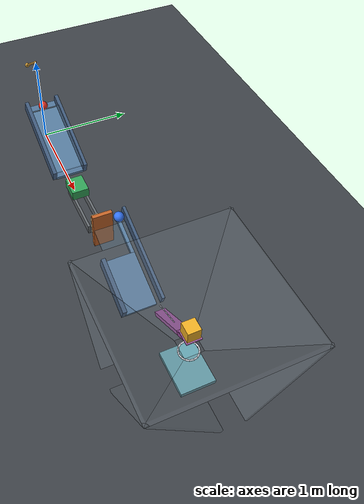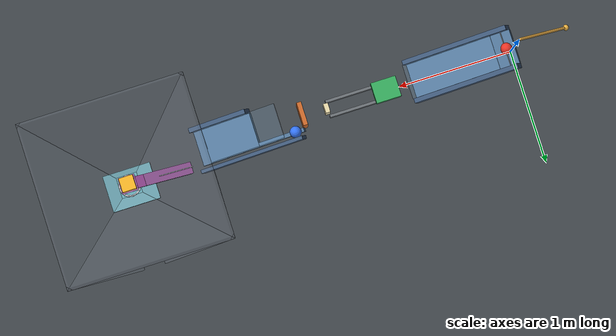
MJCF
<mujoco model="passive_chain_launcher_revision">
  <compiler angle="degree" autolimits="true"/>
  <option timestep="0.002" gravity="0 0 -9.81" integrator="implicitfast" solver="Newton" iterations="100" tolerance="1e-10"/>
  <size njmax="3000" nconmax="800"/>
  <visual>
    <global azimuth="135" elevation="-20"/>
    <headlight ambient="0.35 0.35 0.35" diffuse="0.65 0.65 0.65" specular="0.15 0.15 0.15"/>
  </visual>

  <!-- Contact damping approximates restitution 0.05. -->
  <!-- Tangential friction is 0.68 throughout. -->
  <!-- All bodies start from rest; there are no actuators or timed controls. -->
  <!-- The launcher uses a passive preloaded over-centre spring. -->

  <worldbody>
    <light name="main_light" pos="1.5 -3 5" dir="0 0 -1"/>
    <camera name="overview" pos="2 -5 2.8" xyaxes="1 0 0 0 0.4 0.916515"/>
    <geom name="floor" type="plane" pos="0 0 0" size="6 3 0.1" condim="6" friction="0.68 0.005 0.001" solref="0.006 0.6901" solimp="0.95 0.99 0.001" rgba="0.24 0.26 0.28 1"/>

    <!-- Body orientation supplies the 55-degree release angle. -->
    <!-- Pivot-to-lowest-point length is 0.55 m; total mass is 0.40 kg. -->
    <body name="pendulum1" pos="-0.001991 0 1.012032" quat="0.887010833 0 0.461748613 0">
      <joint name="pendulum1_hinge" type="hinge" axis="0 1 0" range="-110 0" damping="0.04" solreflimit="0.004 1" solimplimit="0.99 0.999 0.0001"/>
      <geom name="pendulum1_rod" type="capsule" fromto="0 0 -0.012 0 0 -0.510" size="0.012" mass="0.10" friction="0.68 0.005 0.001" solref="0.006 0.6901" solimp="0.95 0.99 0.001" rgba="0.75 0.55 0.20 1"/>
      <geom name="pendulum1_tip" type="sphere" pos="0 0 -0.525" size="0.025" mass="0.30" friction="0.68 0.005 0.001" solref="0.006 0.6901" solimp="0.95 0.99 0.001" rgba="0.90 0.68 0.25 1"/>
    </body>

    <body name="ball1" pos="0.073009 0 0.487032">
      <freejoint name="ball1_free"/>
      <geom name="ball1_geom" type="sphere" size="0.05" mass="0.20" condim="6" friction="0.68 0.005 0.001" solref="0.006 0.6901" solimp="0.95 0.99 0.001" rgba="0.90 0.20 0.15 1"/>
    </body>

    <!-- Deck: 0.95 m long, 0.30 m wide, inclined 19 degrees. -->
    <!-- The low-end upper surface is at z=0.15 m. -->
    <body name="ramp1" pos="0.442610 0 0.285735" quat="0.986285602 0 0.165047606 0">
      <geom name="ramp1_deck" type="box" size="0.475 0.15 0.02" friction="0.68 0.005 0.001" solref="0.006 0.6901" solimp="0.95 0.99 0.001" rgba="0.32 0.46 0.60 1"/>
      <geom name="ramp1_chock" type="cylinder" fromto="-0.394604 -0.15 0.02 -0.394604 0.15 0.02" size="0.004" friction="0.68 0.005 0.001" solref="0.006 0.6901" solimp="0.95 0.99 0.001" rgba="0.65 0.70 0.75 1"/>
      <geom name="ramp1_left_rail" type="box" pos="0 -0.17 0.055" size="0.475 0.02 0.065" friction="0.68 0.005 0.001" solref="0.006 0.6901" solimp="0.95 0.99 0.001" rgba="0.25 0.35 0.48 1"/>
      <geom name="ramp1_right_rail" type="box" pos="0 0.17 0.055" size="0.475 0.02 0.065" friction="0.68 0.005 0.001" solref="0.006 0.6901" solimp="0.95 0.99 0.001" rgba="0.25 0.35 0.48 1"/>
      <geom name="ramp1_upper_guard" type="box" pos="0.075 0 0.135" size="0.40 0.15 0.01" friction="0.68 0.005 0.001" solref="0.006 0.6901" solimp="0.95 0.99 0.001" rgba="0.45 0.62 0.75 0.22"/>
    </body>

    <!-- Initial ramp-exit-to-cart-face gap is 0.12 m. -->
    <!-- Domino contact occurs at slide position 0.40 m. -->
    <!-- The extra 0.01 m separates the domino impact from the cart's joint stop. -->
    <body name="cart1" pos="1.128243 0 0.15">
      <joint name="cart1_slide" type="slide" axis="1 0 0" range="0 0.41" damping="0.20" solreflimit="0.004 1" solimplimit="0.99 0.999 0.0001"/>
      <geom name="cart1_geom" type="box" size="0.11 0.09 0.05" mass="0.50" friction="0.68 0.005 0.001" solref="0.006 0.6901" solimp="0.95 0.99 0.001" rgba="0.20 0.65 0.35 1"/>
    </body>

    <body name="cart1_track" pos="1.333243 0 0">
      <geom name="cart1_track_left" type="box" pos="0 -0.065 0.0485" size="0.315 0.012 0.0485" friction="0.68 0.005 0.001" solref="0.006 0.6901" solimp="0.95 0.99 0.001" rgba="0.40 0.42 0.44 1"/>
      <geom name="cart1_track_right" type="box" pos="0 0.065 0.0485" size="0.315 0.012 0.0485" friction="0.68 0.005 0.001" solref="0.006 0.6901" solimp="0.95 0.99 0.001" rgba="0.40 0.42 0.44 1"/>
    </body>

    <!-- The 0.04 m dimension faces the tipping direction. -->
    <body name="domino1" pos="1.658243 0 0.12">
      <freejoint name="domino1_free"/>
      <geom name="domino1_geom" type="box" size="0.02 0.04 0.12" mass="0.25" friction="0.68 0.005 0.001" solref="0.006 0.6901" solimp="0.95 0.99 0.001" rgba="0.88 0.83 0.65 1"/>
    </body>

    <!-- Domino forward floor edge to flap face is 0.18 m. -->
    <body name="flap1" pos="1.878243 0 0.08">
      <joint name="flap1_hinge" type="hinge" axis="0 1 0" range="0 65" damping="0.04" solreflimit="0.004 1" solimplimit="0.99 0.999 0.0001"/>
      <geom name="flap1_geom" type="box" pos="0 0 0.20" size="0.02 0.10 0.20" mass="0.30" friction="0.68 0.005 0.001" solref="0.006 0.6901" solimp="0.95 0.99 0.001" rgba="0.78 0.40 0.16 1"/>
    </body>

    <body name="ball2" pos="1.978252 0.1325 0.487032">
      <freejoint name="ball2_free"/>
      <geom name="ball2_geom" type="sphere" size="0.05" mass="0.20" condim="6" friction="0.68 0.005 0.001" solref="0.006 0.6901" solimp="0.95 0.99 0.001" rgba="0.20 0.45 0.95 1"/>
    </body>

    <!-- The upper side strip leaves clearance for the flap's sweep. -->
    <!-- Deck length is 0.95 m; the lower deck spans the full 0.30 m width. -->
    <body name="ramp2" pos="2.347853 0 0.285735" quat="0.986285602 0 0.165047606 0">
      <geom name="ramp2_upper_strip" type="box" pos="-0.265 0.1325 0" size="0.21 0.0175 0.02" friction="0.68 0.005 0.001" solref="0.006 0.6901" solimp="0.95 0.99 0.001" rgba="0.32 0.46 0.60 1"/>
      <geom name="ramp2_lower_deck" type="box" pos="0.21 0 0" size="0.265 0.15 0.02" friction="0.68 0.005 0.001" solref="0.006 0.6901" solimp="0.95 0.99 0.001" rgba="0.32 0.46 0.60 1"/>
      <geom name="ramp2_chock" type="cylinder" fromto="-0.394604 0.115 0.02 -0.394604 0.15 0.02" size="0.004" friction="0.68 0.005 0.001" solref="0.006 0.6901" solimp="0.95 0.99 0.001" rgba="0.65 0.70 0.75 1"/>
      <geom name="ramp2_outer_rail" type="box" pos="0 0.1975 0.075" size="0.475 0.015 0.055" friction="0.68 0.005 0.001" solref="0.006 0.6901" solimp="0.95 0.99 0.001" rgba="0.25 0.35 0.48 1"/>
      <geom name="ramp2_lower_inner_rail" type="box" pos="0.21 -0.17 0.055" size="0.265 0.02 0.065" friction="0.68 0.005 0.001" solref="0.006 0.6901" solimp="0.95 0.99 0.001" rgba="0.25 0.35 0.48 1"/>
      <geom name="ramp2_upper_guard" type="box" pos="0.075 0 0.135" size="0.40 0.15 0.01" friction="0.68 0.005 0.001" solref="0.006 0.6901" solimp="0.95 0.99 0.001" rgba="0.45 0.62 0.75 0.22"/>
    </body>

    <body name="seesaw1_spring_anchor" pos="2.899274 0.1325 0.263806">
      <site name="seesaw1_spring_anchor_site" type="sphere" size="0.006" rgba="0.85 0.85 0.85 1"/>
    </body>

    <!-- Initial beam inclination is 35 degrees. -->
    <!-- Its leftmost surface is 0.10 m beyond the ramp exit. -->
    <!-- Beam and carrying shelf together have mass 0.55 kg. -->
    <!-- Initial spring torque is just below the loaded gravitational torque. -->
    <!-- Its moment increases after positive motion, reducing the impact needed for release. -->
    <body name="seesaw1" pos="3.181182 0.1325 0.366412" quat="0.953716951 0 -0.300705800 0">
      <joint name="seesaw1_hinge" type="hinge" axis="0 -1 0" range="0 40" damping="0.04" solreflimit="0.004 1" solimplimit="0.99 0.999 0.0001"/>
      <geom name="seesaw1_beam" type="box" size="0.325 0.05 0.02" mass="0.52" friction="0.68 0.005 0.001" solref="0.006 0.6901" solimp="0.95 0.99 0.001" rgba="0.65 0.32 0.65 1"/>
      <geom name="seesaw1_shelf" type="box" pos="0.345075 0 0.028670" quat="0.953716951 0 0.300705800 0" size="0.07 0.07 0.006" mass="0.03" friction="0.68 0.005 0.001" solref="0.006 0.6901" solimp="0.95 0.99 0.001" rgba="0.72 0.42 0.72 1"/>
      <site name="seesaw1_spring_attachment" type="sphere" pos="0.10 0 0" size="0.005" rgba="0.85 0.85 0.85 1"/>
    </body>

    <body name="block1" pos="3.447406 0.1325 0.653825">
      <freejoint name="block1_free"/>
      <geom name="block1_geom" type="box" size="0.06 0.06 0.06" mass="0.35" contype="3" conaffinity="3" friction="0.68 0.005 0.001" solref="0.006 0.6901" solimp="0.95 0.99 0.001" rgba="0.95 0.70 0.15 1"/>
    </body>

    <!-- Wide flared catch guide replaces the close-fitting vertical shaft. -->
    <!-- Inner opening is 1.40 m square at z=1.05 and 0.18 m square at z=0.43. -->
    <!-- It leaves the initial block and its launching sweep clear. -->
    <!-- Collision bit 2 restricts this apparatus to block1, leaving the launcher unobstructed. -->
    <body name="block1_guide" pos="3.447406 0.1325 0.74">
      <geom name="block1_guide_left" type="box" pos="-0.405693 0 -0.010520" quat="0.925428 0 -0.378925 0" size="0.015 0.72 0.434885" contype="2" conaffinity="2" friction="0.68 0.005 0.001" solref="0.006 0.6901" solimp="0.95 0.99 0.001" rgba="0.55 0.60 0.65 0.20"/>
      <geom name="block1_guide_right" type="box" pos="0.405693 0 -0.010520" quat="0.925428 0 0.378925 0" size="0.015 0.72 0.434885" contype="2" conaffinity="2" friction="0.68 0.005 0.001" solref="0.006 0.6901" solimp="0.95 0.99 0.001" rgba="0.55 0.60 0.65 0.20"/>
      <geom name="block1_guide_front" type="box" pos="0 -0.405693 -0.010520" quat="0.925428 0.378925 0 0" size="0.72 0.015 0.434885" contype="2" conaffinity="2" friction="0.68 0.005 0.001" solref="0.006 0.6901" solimp="0.95 0.99 0.001" rgba="0.55 0.60 0.65 0.20"/>
      <geom name="block1_guide_back" type="box" pos="0 0.405693 -0.010520" quat="0.925428 -0.378925 0 0" size="0.72 0.015 0.434885" contype="2" conaffinity="2" friction="0.68 0.005 0.001" solref="0.006 0.6901" solimp="0.95 0.99 0.001" rgba="0.55 0.60 0.65 0.20"/>
    </body>

    <!-- Ring plane is 0.30 m below block1's initial center. -->
    <!-- Capsule chords have centerline apothem 0.087 m and tube radius 0.007 m. -->
    <!-- The inscribed clear diameter is therefore 0.16 m. -->
    <!-- The rigid cube cannot clear this opening; its requested dimensions are preserved. -->
    <body name="ring1" pos="3.447406 0.1325 0.353825">
      <geom name="ring1_segment01" type="capsule" fromto="0.088704 0 0 0.081952 0.033945 0" size="0.007" friction="0.68 0.005 0.001" solref="0.006 0.6901" solimp="0.95 0.99 0.001" rgba="0.85 0.85 0.88 1"/>
      <geom name="ring1_segment02" type="capsule" fromto="0.081952 0.033945 0 0.062724 0.062724 0" size="0.007" friction="0.68 0.005 0.001" solref="0.006 0.6901" solimp="0.95 0.99 0.001" rgba="0.85 0.85 0.88 1"/>
      <geom name="ring1_segment03" type="capsule" fromto="0.062724 0.062724 0 0.033945 0.081952 0" size="0.007" friction="0.68 0.005 0.001" solref="0.006 0.6901" solimp="0.95 0.99 0.001" rgba="0.85 0.85 0.88 1"/>
      <geom name="ring1_segment04" type="capsule" fromto="0.033945 0.081952 0 0 0.088704 0" size="0.007" friction="0.68 0.005 0.001" solref="0.006 0.6901" solimp="0.95 0.99 0.001" rgba="0.85 0.85 0.88 1"/>
      <geom name="ring1_segment05" type="capsule" fromto="0 0.088704 0 -0.033945 0.081952 0" size="0.007" friction="0.68 0.005 0.001" solref="0.006 0.6901" solimp="0.95 0.99 0.001" rgba="0.85 0.85 0.88 1"/>
      <geom name="ring1_segment06" type="capsule" fromto="-0.033945 0.081952 0 -0.062724 0.062724 0" size="0.007" friction="0.68 0.005 0.001" solref="0.006 0.6901" solimp="0.95 0.99 0.001" rgba="0.85 0.85 0.88 1"/>
      <geom name="ring1_segment07" type="capsule" fromto="-0.062724 0.062724 0 -0.081952 0.033945 0" size="0.007" friction="0.68 0.005 0.001" solref="0.006 0.6901" solimp="0.95 0.99 0.001" rgba="0.85 0.85 0.88 1"/>
      <geom name="ring1_segment08" type="capsule" fromto="-0.081952 0.033945 0 -0.088704 0 0" size="0.007" friction="0.68 0.005 0.001" solref="0.006 0.6901" solimp="0.95 0.99 0.001" rgba="0.85 0.85 0.88 1"/>
      <geom name="ring1_segment09" type="capsule" fromto="-0.088704 0 0 -0.081952 -0.033945 0" size="0.007" friction="0.68 0.005 0.001" solref="0.006 0.6901" solimp="0.95 0.99 0.001" rgba="0.85 0.85 0.88 1"/>
      <geom name="ring1_segment10" type="capsule" fromto="-0.081952 -0.033945 0 -0.062724 -0.062724 0" size="0.007" friction="0.68 0.005 0.001" solref="0.006 0.6901" solimp="0.95 0.99 0.001" rgba="0.85 0.85 0.88 1"/>
      <geom name="ring1_segment11" type="capsule" fromto="-0.062724 -0.062724 0 -0.033945 -0.081952 0" size="0.007" friction="0.68 0.005 0.001" solref="0.006 0.6901" solimp="0.95 0.99 0.001" rgba="0.85 0.85 0.88 1"/>
      <geom name="ring1_segment12" type="capsule" fromto="-0.033945 -0.081952 0 0 -0.088704 0" size="0.007" friction="0.68 0.005 0.001" solref="0.006 0.6901" solimp="0.95 0.99 0.001" rgba="0.85 0.85 0.88 1"/>
      <geom name="ring1_segment13" type="capsule" fromto="0 -0.088704 0 0.033945 -0.081952 0" size="0.007" friction="0.68 0.005 0.001" solref="0.006 0.6901" solimp="0.95 0.99 0.001" rgba="0.85 0.85 0.88 1"/>
      <geom name="ring1_segment14" type="capsule" fromto="0.033945 -0.081952 0 0.062724 -0.062724 0" size="0.007" friction="0.68 0.005 0.001" solref="0.006 0.6901" solimp="0.95 0.99 0.001" rgba="0.85 0.85 0.88 1"/>
      <geom name="ring1_segment15" type="capsule" fromto="0.062724 -0.062724 0 0.081952 -0.033945 0" size="0.007" friction="0.68 0.005 0.001" solref="0.006 0.6901" solimp="0.95 0.99 0.001" rgba="0.85 0.85 0.88 1"/>
      <geom name="ring1_segment16" type="capsule" fromto="0.081952 -0.033945 0 0.088704 0 0" size="0.007" friction="0.68 0.005 0.001" solref="0.006 0.6901" solimp="0.95 0.99 0.001" rgba="0.85 0.85 0.88 1"/>
    </body>

    <!-- Door upper surface is 0.25 m below the ring plane. -->
    <body name="door1" pos="3.237406 0.1325 0.083825">
      <joint name="door1_hinge" type="hinge" axis="0 1 0" range="0 8" damping="0.04" stiffness="1.50" springref="-40" solreflimit="0.004 1" solimplimit="0.99 0.999 0.0001"/>
      <geom name="door1_geom" type="box" pos="0.21 0 0" size="0.21 0.16 0.02" mass="0.45" friction="0.68 0.005 0.001" solref="0.006 0.6901" solimp="0.95 0.99 0.001" rgba="0.40 0.65 0.70 1"/>
    </body>
  </worldbody>

  <tendon>
    <spatial name="seesaw1_launch_spring" stiffness="520" springlength="0.30" damping="0" width="0.004" rgba="0.80 0.80 0.85 1">
      <site site="seesaw1_spring_anchor_site"/>
      <site site="seesaw1_spring_attachment"/>
    </spatial>
  </tendon>

  <keyframe>
    <key name="start"/>
  </keyframe>
</mujoco>
